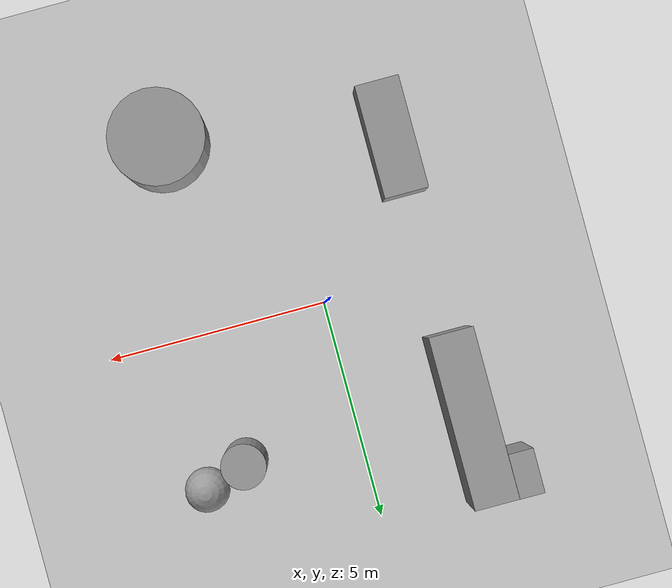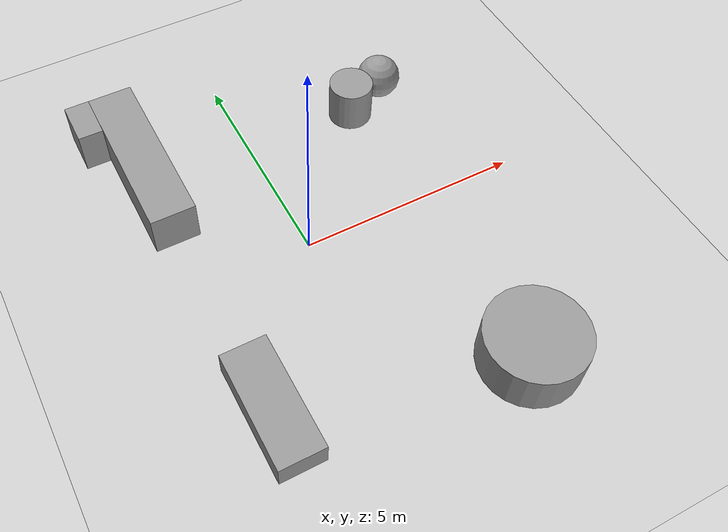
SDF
<sdf version="1.7">
 <world name="default">
  <light name="sun" type="directional">
   <pose>0 0 10 0 -0 0</pose>
   <diffuse>0.8 0.8 0.8 1</diffuse>
   <specular>0.2 0.2 0.2 1</specular>
   <attenuation>
    <range>1000</range>
    <constant>0.9</constant>
    <linear>0.01</linear>
    <quadratic>0.001</quadratic>
   </attenuation>
   <direction>-0.5 0.1 -0.9</direction>
   <spot><inner_angle>0</inner_angle><outer_angle>0</outer_angle><falloff>0</falloff></spot>
  </light>
  <model name="ground_plane">
   <static>1</static>
   <link name="link">
    <collision name="collision">
     <geometry><plane><normal>0 0 1</normal><size>100 100</size></plane></geometry>
     <surface>
      <contact><collide_bitmask>65535</collide_bitmask></contact>
      <friction><ode><mu>100</mu><mu2>50</mu2></ode></friction>
     </surface>
    </collision>
    <visual name="visual">
     <cast_shadows>0</cast_shadows>
     <geometry><plane><normal>0 0 1</normal><size>100 100</size></plane></geometry>
     <material>
      <script><uri>file://media/materials/scripts/gazebo.material</uri><name>Gazebo/Grey</name></script>
     </material>
    </visual>
   </link>
  </model>
  <gravity>0 0 -9.8</gravity>
  <magnetic_field>6e-06 2.3e-05 -4.2e-05</magnetic_field>
  <atmosphere type="adiabatic"/>
  <physics type="ode">
   <max_step_size>0.001</max_step_size>
   <real_time_factor>1</real_time_factor>
   <real_time_update_rate>1000</real_time_update_rate>
  </physics>
  <scene><ambient>0.4 0.4 0.4 1</ambient><background>0.7 0.7 0.7 1</background><shadows>1</shadows></scene>
  <audio><device>default</device></audio>
  <spherical_coordinates>
   <surface_model>EARTH_WGS84</surface_model>
   <latitude_deg>0</latitude_deg>
   <longitude_deg>0</longitude_deg>
   <elevation>0</elevation>
   <heading_deg>0</heading_deg>
  </spherical_coordinates>
  <model name="unit_box_4">
   <pose>-2.38139 -3.13098 0.298287 0 -1e-05 -5.8e-05</pose>
   <link name="link">
    <inertial>
     <mass>1</mass>
     <inertia>
      <ixx>0.166667</ixx>
      <ixy>0</ixy>
      <ixz>0</ixz>
      <iyy>0.166667</iyy>
      <iyz>0</iyz>
      <izz>0.166667</izz>
     </inertia>
    </inertial>
    <collision name="collision"><geometry><box><size>1 2.56809 0.596584</size></box></geometry></collision>
    <visual name="visual">
     <geometry><box><size>1 2.56809 0.596584</size></box></geometry>
     <material>
      <script><name>Gazebo/Grey</name><uri>file://media/materials/scripts/gazebo.material</uri></script>
     </material>
    </visual>
   </link>
  </model>
  <model name="unit_cylinder_1_clone">
   <pose>2.58528 -4.38829 0.499995 -5e-06 -5e-06 -4.3e-05</pose>
   <link name="link">
    <inertial>
     <mass>1</mass>
     <inertia><ixx>0.145833</ixx><ixy>0</ixy><ixz>0</ixz><iyy>0.145833</iyy><iyz>0</iyz><izz>0.125</izz></inertia>
    </inertial>
    <collision name="collision">
     <geometry><cylinder><radius>1.07146</radius><length>1</length></cylinder></geometry>
    </collision>
    <visual name="visual">
     <geometry><cylinder><radius>1.07146</radius><length>1</length></cylinder></geometry>
     <material>
      <script><name>Gazebo/Grey</name><uri>file://media/materials/scripts/gazebo.material</uri></script>
     </material>
    </visual>
   </link>
  </model>
  <model name="unit_box">
   <pose>-2.445 3.27445 0.5 0 1e-06 -0.001485</pose>
   <link name="link">
    <inertial>
     <mass>1</mass>
     <inertia>
      <ixx>0.166667</ixx>
      <ixy>0</ixy>
      <ixz>0</ixz>
      <iyy>0.166667</iyy>
      <iyz>0</iyz>
      <izz>0.166667</izz>
     </inertia>
    </inertial>
    <collision name="collision"><geometry><box><size>1 3.86643 1</size></box></geometry></collision>
    <visual name="visual">
     <geometry><box><size>1 3.86643 1</size></box></geometry>
     <material>
      <script><name>Gazebo/Grey</name><uri>file://media/materials/scripts/gazebo.material</uri></script>
     </material>
    </visual>
   </link>
  </model>
  <model name="unit_box_0">
   <pose>-3.22399 4.7135 0.5 0 0 -0.004641</pose>
   <link name="link">
    <inertial>
     <mass>1</mass>
     <inertia>
      <ixx>0.166667</ixx>
      <ixy>0</ixy>
      <ixz>0</ixz>
      <iyy>0.166667</iyy>
      <iyz>0</iyz>
      <izz>0.166667</izz>
     </inertia>
    </inertial>
    <collision name="collision"><geometry><box><size>0.558232 1 1</size></box></geometry></collision>
    <visual name="visual">
     <geometry><box><size>0.558232 1 1</size></box></geometry>
     <material>
      <script><name>Gazebo/Grey</name><uri>file://media/materials/scripts/gazebo.material</uri></script>
     </material>
    </visual>
   </link>
  </model>
  <model name="unit_cylinder">
   <pose>2.62583 2.979 0.499992 -3e-06 2e-06 0.008394</pose>
   <link name="link">
    <inertial>
     <mass>1</mass>
     <inertia><ixx>0.145833</ixx><ixy>0</ixy><ixz>0</ixz><iyy>0.145833</iyy><iyz>0</iyz><izz>0.125</izz></inertia>
    </inertial>
    <collision name="collision">
     <geometry><cylinder><radius>0.5</radius><length>1</length></cylinder></geometry>
    </collision>
    <visual name="visual">
     <geometry><cylinder><radius>0.5</radius><length>1</length></cylinder></geometry>
     <material>
      <script><name>Gazebo/Grey</name><uri>file://media/materials/scripts/gazebo.material</uri></script>
     </material>
    </visual>
   </link>
  </model>
  <model name="unit_sphere_0">
   <pose>3.57281 3.32459 0.5 -0.006427 0.015395 -0.002755</pose>
   <link name="link">
    <inertial>
     <mass>1</mass>
     <inertia><ixx>0.1</ixx><ixy>0</ixy><ixz>0</ixz><iyy>0.1</iyy><iyz>0</iyz><izz>0.1</izz></inertia>
    </inertial>
    <collision name="collision"><geometry><sphere><radius>0.5</radius></sphere></geometry></collision>
    <visual name="visual">
     <geometry><sphere><radius>0.5</radius></sphere></geometry>
     <material>
      <script><name>Gazebo/Grey</name><uri>file://media/materials/scripts/gazebo.material</uri></script>
     </material>
    </visual>
   </link>
  </model>
 </world>
</sdf>
